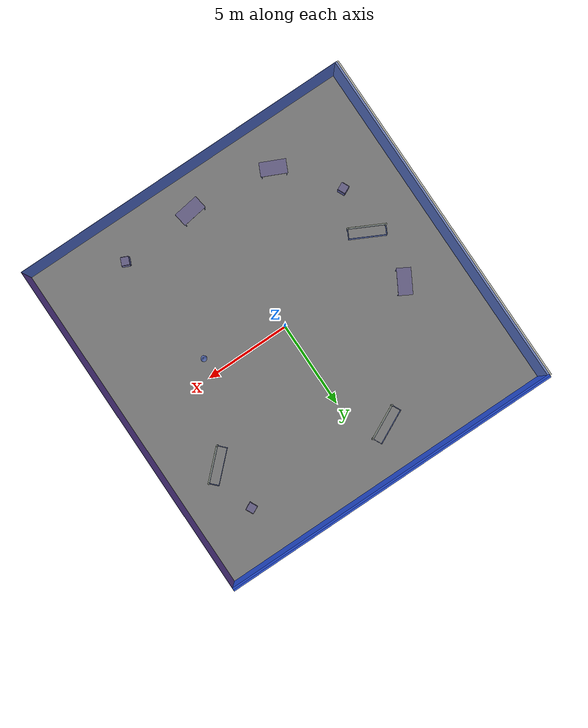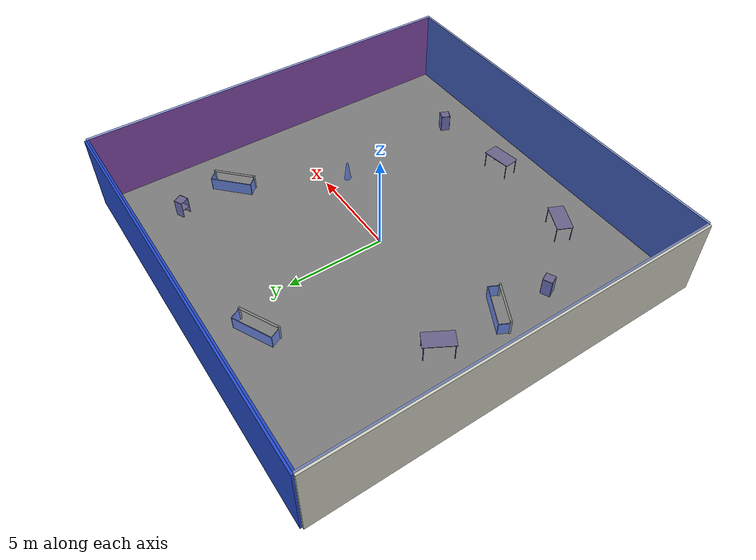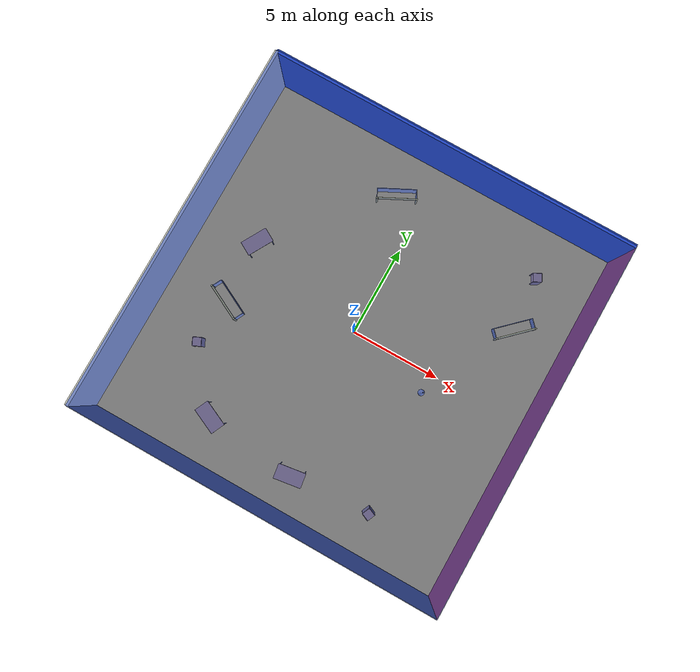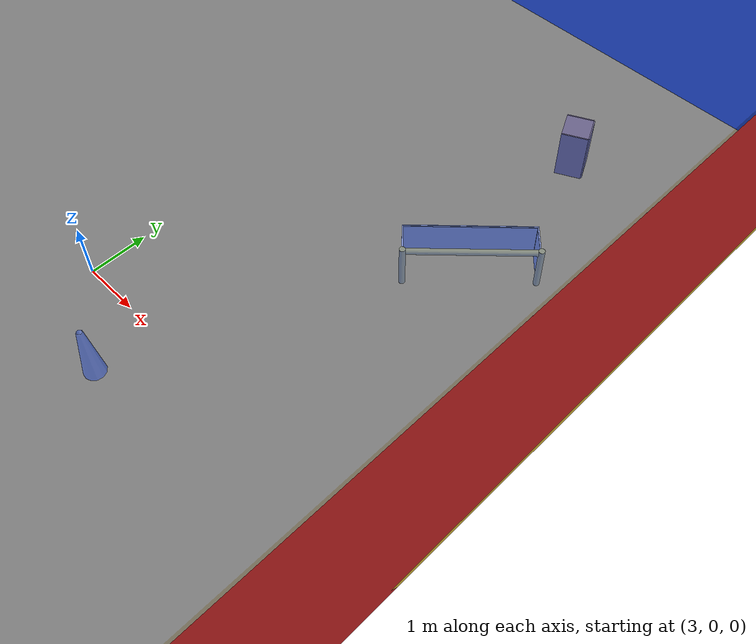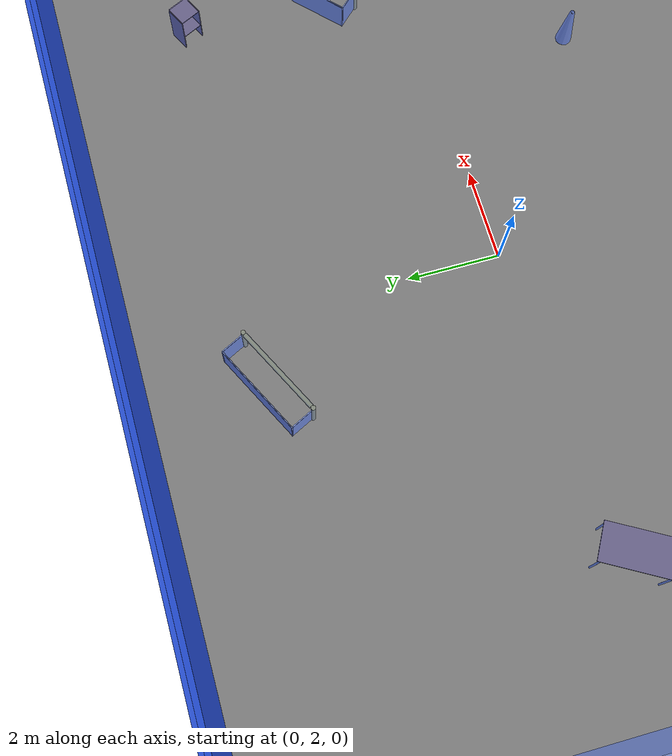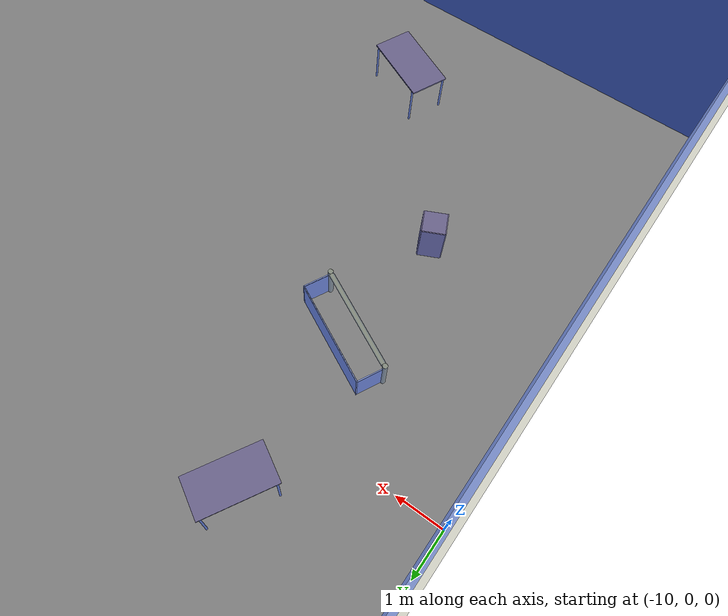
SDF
<sdf version="1.4">
 <world name="default">
  <physics type="ode">
   <max_step_size>0.001</max_step_size>
   <real_time_factor>1</real_time_factor>
   <real_time_update_rate>1000</real_time_update_rate>
   <gravity>0 0 -9.8</gravity>
  </physics>
  <scene><ambient>0.4 0.4 0.4 1</ambient><background>0.7 0.7 0.7 1</background><shadows>1</shadows></scene>
  <model name="Surrounding">
   <static>1</static>
   <link name="Ceiling">
    <collision name="Ceiling_Collision"><geometry><box><size>20 20 0.1</size></box></geometry></collision>
    <visual name="Ceiling_Visual">
     <geometry><box><size>20 20 0.1</size></box></geometry>
     <material>
      <script><uri>file://media/materials/scripts/gazebo.material</uri><name>Gazebo/BlueTransparent</name></script>
     </material>
    </visual>
    <pose>0 0 4.05 0 0 0</pose>
   </link>
   <link name="Wall_South">
    <collision name="Wall_South_Collision">
     <geometry><box><size>20 0 4</size></box></geometry>
     <pose>0 0 2 0 -0 0</pose>
    </collision>
    <visual name="Wall_South_Visual">
     <pose>0 0 2 0 -0 0</pose>
     <geometry><box><size>20 0 4</size></box></geometry>
     <material>
      <script><uri>file://media/materials/scripts/gazebo.material</uri><name>Gazebo/Road</name></script>
     </material>
    </visual>
    <velocity_decay><linear>0</linear><angular>0</angular></velocity_decay>
    <pose>0 -10 0 0 -0 0</pose>
   </link>
   <link name="Wall_East">
    <collision name="Wall_21_Collision">
     <geometry><box><size>20 0 4</size></box></geometry>
     <pose>0 0 2 0 -0 0</pose>
    </collision>
    <visual name="Wall_21_Visual">
     <pose>0 0 2 0 -0 0</pose>
     <geometry><box><size>20 0 4</size></box></geometry>
     <material>
      <script><uri>file://media/materials/scripts/gazebo.material</uri><name>Gazebo/RedBright</name></script>
     </material>
    </visual>
    <velocity_decay><linear>0</linear><angular>0</angular></velocity_decay>
    <pose>10 0 0 0 -0 1.5708</pose>
   </link>
   <link name="Wall_North">
    <collision name="Wall_22_Collision">
     <geometry><box><size>20 0.2 4</size></box></geometry>
     <pose>0 0 2 0 -0 0</pose>
    </collision>
    <visual name="Wall_22_Visual">
     <pose>0 0 2 0 -0 0</pose>
     <geometry><box><size>20 0.2 4</size></box></geometry>
     <material>
      <script><uri>file://media/materials/scripts/gazebo.material</uri><name>Gazebo/BlueGlow</name></script>
     </material>
    </visual>
    <velocity_decay><linear>0</linear><angular>0</angular></velocity_decay>
    <pose>0 10 0 0 -0 0</pose>
   </link>
   <link name="Wall_West">
    <collision name="Wall_23_Collision">
     <geometry><box><size>20 0.2 4</size></box></geometry>
     <pose>0 0 2 0 -0 0</pose>
    </collision>
    <visual name="Wall_23_Visual">
     <pose>0 0 2 0 -0 0</pose>
     <geometry><box><size>20 0.2 4</size></box></geometry>
     <material>
      <script><uri>file://media/materials/scripts/gazebo.material</uri><name>Gazebo/PaintedWall</name></script>
     </material>
    </visual>
    <velocity_decay><linear>0</linear><angular>0</angular></velocity_decay>
    <pose>-10 0 0 0 0 -1.5708</pose>
   </link>
   <link name="Ground_link">
    <collision name="collision">
     <pose>0 0 .05 0 -0 0</pose>
     <geometry><box><size>20 20 0.1</size></box></geometry>
    </collision>
    <visual name="visual">
     <pose>0 0 .05 0 -0 0</pose>
     <geometry><box><size>20 20 0.1</size></box></geometry>
     <material>
      <script><uri>file://media/materials/scripts/gazebo.material</uri><name>Gazebo/Gold</name></script>
     </material>
    </visual>
   </link>
   <static>1</static>
  </model>
  <spherical_coordinates>
   <surface_model>EARTH_WGS84</surface_model>
   <latitude_deg>0</latitude_deg>
   <longitude_deg>0</longitude_deg>
   <elevation>0</elevation>
   <heading_deg>0</heading_deg>
  </spherical_coordinates>
  <light name="lightball_0" type="diffuse">
   <diffuse>0.8 0.8 0.8 1</diffuse>
   <specular>0.2 0.2 0.2 1</specular>
   <attenuation>
    <range>100</range>
    <constant>0.7</constant>
    <linear>0.01</linear>
    <quadratic>0.001</quadratic>
   </attenuation>
   <direction>-0.5 0.1 -0.9</direction>
   <pose>-5.90788982053 8.94203298376 2.82890208759 0 0 0</pose>
  </light>
  <light name="lightball_1" type="diffuse">
   <diffuse>0.8 0.8 0.8 1</diffuse>
   <specular>0.2 0.2 0.2 1</specular>
   <attenuation>
    <range>100</range>
    <constant>0.7</constant>
    <linear>0.01</linear>
    <quadratic>0.001</quadratic>
   </attenuation>
   <direction>-0.5 0.1 -0.9</direction>
   <pose>-2.5949081778 -1.48851743881 2.24849141891 0 0 0</pose>
  </light>
  <include><uri>model://cabinet</uri><pose>-6.81786793026 -4.49119845897 0 0 0 2.01501965877</pose></include>
  <include>
   <uri>model://robocup_3Dsim_goal</uri>
   <pose>-6.71980041523 -2.05435498827 0 0 0 1.10002011009</pose>
  </include>
  <include><uri>model://table</uri><pose>-6.72349299888 1.58097596864 0 0 0 1.0554669364</pose></include>
  <include><uri>model://table</uri><pose>-4.27300351249 -7.52784027322 0 0 0 2.7081187714</pose></include>
  <include>
   <uri>model://robocup_3Dsim_goal</uri>
   <pose>-1.47004728413 7.21633227369 0 0 0 2.03555805071</pose>
  </include>
  <include><uri>model://table</uri><pose>0.775702002839 -8.08648142651 0 0 0 0.145659101099</pose></include>
  <include><uri>model://cabinet</uri><pose>5.23169390286 -7.79986898054 0 0 0 2.72709414553</pose></include>
  <include>
   <uri>model://construction_cone</uri>
   <pose>4.64484286609 -1.05882025037 0 0 0 0.122516299606</pose>
  </include>
  <include>
   <uri>model://robocup_3Dsim_goal</uri>
   <pose>7.42670550714 4.00607948258 0 0 0 2.33580549561</pose>
  </include>
  <include><uri>model://cabinet</uri><pose>6.97481869337 7.10660051635 0 0 0 0.46064171605</pose></include>
 </world>
</sdf>

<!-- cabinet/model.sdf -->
<sdf version="1.5">
  <model name="cabinet">
    <static>true</static>
    <link name="cabinet_bottom_plate">
      <inertial>
        <pose>0 0 -1 0 0 0</pose>
        <inertia>
          <ixx>2.050000</ixx>
          <ixy>0</ixy>
          <ixz>0</ixz>
          <iyy>2.050000</iyy>
          <iyz>0</iyz>
          <izz>2.050000</izz>
        </inertia>
        <mass>25.000000</mass>
      </inertial>
      <collision name="cabinet_bottom_plate_geom">
        <pose>0 0 0.010000 0 0 0</pose>
        <geometry>
          <box>
            <size>0.450000 0.450000 0.020000</size>
          </box>
        </geometry>
      </collision>
      <visual name="cabinet_bottom_plate_geom_visual">
        <pose>0 0 0.010000 0 0 0</pose>
        <geometry>
          <box>
            <size>0.450000 0.450000 0.020000</size>
          </box>
        </geometry>
        <material>
          <script>
            <uri>model://media/materials/scripts/gazebo.material</uri>
            <name>Gazebo/Wood</name>
          </script>
        </material>
      </visual>
      <collision name="cabinet_bottom_plate_geom_cabinet_back_plate">
        <pose>0.235000 0 0.510000 0 0 0</pose>
        <geometry>
          <box>
            <size>0.020000 0.450000 1.020000</size>
          </box>
        </geometry>
      </collision>
      <visual name="cabinet_bottom_plate_geom_cabinet_back_plate_visual">
        <pose>0.235000 0 0.510000 0 0 0</pose>
        <geometry>
          <box>
            <size>0.020000 0.450000 1.020000</size>
          </box>
        </geometry>
        <material>
          <script>
            <uri>model://media/materials/scripts/gazebo.material</uri>
            <name>Gazebo/Wood</name>
          </script>
        </material>
      </visual>
      <collision name="cabinet_bottom_plate_geom_cabinet_left_plate">
        <pose>0 0.235000 0.510000 0 0 0</pose>
        <geometry>
          <box>
            <size>0.450000 0.020000 1.020000</size>
          </box>
        </geometry>
      </collision>
      <visual name="cabinet_bottom_plate_geom_cabinet_left_plate_visual">
        <pose>0 0.235000 0.510000 0 0 0</pose>
        <geometry>
          <box>
            <size>0.450000 0.020000 1.020000</size>
          </box>
        </geometry>
        <material>
          <script>
            <uri>model://media/materials/scripts/gazebo.material</uri>
            <name>Gazebo/Wood</name>
          </script>
        </material>
      </visual>
      <collision name="cabinet_bottom_plate_geom_cabinet_middle_plate">
        <pose>0 0 0.510000 0 0 0</pose>
        <geometry>
          <box>
            <size>0.450000 0.450000 0.020000</size>
          </box>
        </geometry>
      </collision>
      <visual name="cabinet_bottom_plate_geom_cabinet_middle_plate_visual">
        <pose>0 0 0.510000 0 0 0</pose>
        <geometry>
          <box>
            <size>0.450000 0.450000 0.020000</size>
          </box>
        </geometry>
        <material>
          <script>
            <uri>model://media/materials/scripts/gazebo.material</uri>
            <name>Gazebo/Wood</name>
          </script>
        </material>
      </visual>
      <collision name="cabinet_bottom_plate_geom_cabinet_right_plate">
        <pose>0 -0.235000 0.510000 0 0 0</pose>
        <geometry>
          <box>
            <size>0.450000 0.020000 1.020000</size>
          </box>
        </geometry>
      </collision>
      <visual name="cabinet_bottom_plate_geom_cabinet_right_plate_visual">
        <pose>0 -0.235000 0.510000 0 0 0</pose>
        <geometry>
          <box>
            <size>0.450000 0.020000 1.020000</size>
          </box>
        </geometry>
        <material>
          <script>
            <uri>model://media/materials/scripts/gazebo.material</uri>
            <name>Gazebo/Wood</name>
          </script>
        </material>
      </visual>
      <collision name="cabinet_bottom_plate_geom_cabinet_top_plate">
        <pose>0 0 1.010000 0 0 0</pose>
        <geometry>
          <box>
            <size>0.450000 0.450000 0.020000</size>
          </box>
        </geometry>
      </collision>
      <visual name="cabinet_bottom_plate_geom_cabinet_top_plate_visual">
        <pose>0 0 1.010000 0 0 0</pose>
        <geometry>
          <box>
            <size>0.450000 0.450000 0.020000</size>
          </box>
        </geometry>
        <material>
          <script>
            <uri>model://media/materials/scripts/gazebo.material</uri>
            <name>Gazebo/Wood</name>
          </script>
        </material>
      </visual>
    </link>
  </model>
</sdf>

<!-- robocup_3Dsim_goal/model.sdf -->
<sdf version="1.5">
  <model name="robocup_3d_goal">
    <static>true</static>
    <link name="left_post">
      <pose>0 1.05 0.45 0 0 0</pose>
      <collision name="collision">
        <geometry>
          <cylinder>
            <radius>0.05</radius>
            <length>0.9</length>
          </cylinder>
        </geometry>
      </collision>
      <visual name="visual">
        <geometry>
          <cylinder>
            <radius>0.05</radius>
            <length>0.9</length>
          </cylinder>
        </geometry>
        <material>
          <script>
            <uri>file://media/materials/scripts/gazebo.material</uri>
            <name>Gazebo/ZincYellow</name>
          </script>
        </material>
      </visual>
    </link>
    <link name="left_support_horiz_lower">
      <pose>0.30 1.05 0.01 0 0 0</pose>
      <collision name="collision">
        <geometry>
          <box>
            <size>0.50 0.02 0.02</size>
          </box>
        </geometry>
      </collision>
      <visual name="visual">
        <geometry>
          <box>
            <size>0.50 0.02 0.02</size>
          </box>
        </geometry>
        <material>
          <script>
            <uri>file://media/materials/scripts/gazebo.material</uri>
            <name>Gazebo/White</name>
          </script>
        </material>
      </visual>
    </link>
    <link name="left_support_horiz_upper">
      <pose>0.30 1.05 0.79 0 0 0</pose>
      <collision name="collision">
        <geometry>
          <box>
            <size>0.50 0.02 0.02</size>
          </box>
        </geometry>
      </collision>
      <visual name="visual">
        <geometry>
          <box>
            <size>0.50 0.02 0.02</size>
          </box>
        </geometry>
        <material>
          <script>
            <uri>file://media/materials/scripts/gazebo.material</uri>
            <name>Gazebo/White</name>
          </script>
        </material>
      </visual>
    </link>
    <link name="left_support_vertical">
      <pose>0.56 1.05 0.4 0 1.5708 0</pose>
      <collision name="collision">
        <geometry>
          <box>
            <size>0.80 0.02 0.02</size>
          </box>
        </geometry>
      </collision>
      <visual name="visual">
        <geometry>
          <box>
            <size>0.80 0.02 0.02</size>
          </box>
        </geometry>
        <material>
          <script>
            <uri>file://media/materials/scripts/gazebo.material</uri>
            <name>Gazebo/White</name>
          </script>
        </material>
      </visual>
    </link>
    <link name="right_support_horiz_lower">
      <pose>0.30 -1.05 0.01 0 0 0</pose>
      <collision name="collision">
        <geometry>
          <box>
            <size>0.50 0.02 0.02</size>
          </box>
        </geometry>
      </collision>
      <visual name="visual">
        <geometry>
          <box>
            <size>0.50 0.02 0.02</size>
          </box>
        </geometry>
        <material>
          <script>
            <uri>file://media/materials/scripts/gazebo.material</uri>
            <name>Gazebo/White</name>
          </script>
        </material>
      </visual>
    </link>
    <link name="right_support_horiz_upper">
      <pose>0.30 -1.05 0.79 0 0 0</pose>
      <collision name="collision">
        <geometry>
          <box>
            <size>0.50 0.02 0.02</size>
          </box>
        </geometry>
      </collision>
      <visual name="visual">
        <geometry>
          <box>
            <size>0.50 0.02 0.02</size>
          </box>
        </geometry>
        <material>
          <script>
            <uri>file://media/materials/scripts/gazebo.material</uri>
            <name>Gazebo/White</name>
          </script>
        </material>
      </visual>
    </link>
    <link name="right_support_vertical">
      <pose>0.56 -1.05 0.4 0 1.5708 0</pose>
      <collision name="collision">
        <geometry>
          <box>
            <size>0.80 0.02 0.02</size>
          </box>
        </geometry>
      </collision>
      <visual name="visual">
        <geometry>
          <box>
            <size>0.80 0.02 0.02</size>
          </box>
        </geometry>
        <material>
          <script>
            <uri>file://media/materials/scripts/gazebo.material</uri>
            <name>Gazebo/White</name>
          </script>
        </material>
      </visual>
    </link>
    <link name="center_support_horiz_lower">
      <pose>0.56 0 0.01 0 1.5708 0</pose>
      <collision name="collision">
        <geometry>
          <box>
            <size>0.02 2.08 0.02</size>
          </box>
        </geometry>
      </collision>
      <visual name="visual">
        <geometry>
          <box>
            <size>0.02 2.08 0.02</size>
          </box>
        </geometry>
        <material>
          <script>
            <uri>file://media/materials/scripts/gazebo.material</uri>
            <name>Gazebo/White</name>
          </script>
        </material>
      </visual>
    </link>
    <link name="center_support_horiz_upper">
      <pose>0.56 0 0.79 0 1.5708 0</pose>
      <collision name="collision">
        <geometry>
          <box>
            <size>0.02 2.08 0.02</size>
          </box>
        </geometry>
      </collision>
      <visual name="visual">
        <geometry>
          <box>
            <size>0.02 2.08 0.02</size>
          </box>
        </geometry>
        <material>
          <script>
            <uri>file://media/materials/scripts/gazebo.material</uri>
            <name>Gazebo/White</name>
          </script>
        </material>
      </visual>
    </link>
    <link name="right_post">
      <pose>0 -1.05 0.45 0 0 0</pose>
      <collision name="collision">
        <geometry>
          <cylinder>
            <radius>0.05</radius>
            <length>0.9</length>
          </cylinder>
        </geometry>
      </collision>
      <visual name="visual">
        <geometry>
          <cylinder>
            <radius>0.05</radius>
            <length>0.9</length>
          </cylinder>
        </geometry>
        <material>
          <script>
            <uri>file://media/materials/scripts/gazebo.material</uri>
            <name>Gazebo/ZincYellow</name>
          </script>
        </material>
      </visual>
    </link>
    <link name="crossbar">
      <pose>0 0 0.85 1.57 1.57 0</pose>
      <collision name="collision">
        <geometry>
          <cylinder>
            <radius>0.05</radius>
            <length>2.0</length>
          </cylinder>
        </geometry>
      </collision>
      <visual name="visual">
        <geometry>
          <cylinder>
            <radius>0.05</radius>
            <length>2.0</length>
          </cylinder>
        </geometry>
        <material>
          <script>
            <uri>file://media/materials/scripts/gazebo.material</uri>
            <name>Gazebo/ZincYellow</name>
          </script>
        </material>
      </visual>
    </link>
    <link name="center_net">
      <pose>0.56 0 0.40 0 0 0</pose>
      <collision name="collision">
        <geometry>
          <box>
            <size>0.01 2.1 0.80</size>
          </box>
        </geometry>
      </collision>
      <visual name="visual">
        <geometry>
          <box>
            <size>0.01 2.1 0.80</size>
          </box>
        </geometry>
        <material>
          <script>
            <uri>model://../model_source/models/robocup09_spl_field/materials/scripts/</uri>
            <uri>model://../model_source/models/robocup09_spl_field/materials/textures/</uri>
            <name>RoboCup/Net</name>
          </script>
        </material>
      </visual>
    </link>
    <link name="left_net">
      <pose>0.30 1.05 0.40 0 0 0</pose>
      <collision name="collision">
        <geometry>
          <box>
            <size>0.50 0.01 0.76</size>
          </box>
        </geometry>
      </collision>
      <visual name="visual">
        <geometry>
          <box>
            <size>0.50 0.01 0.76</size>
          </box>
        </geometry>
        <material>
          <script>
            <uri>model://../model_source/models/robocup09_spl_field/materials/scripts/</uri>
            <uri>model://../model_source/models/robocup09_spl_field/materials/textures/</uri>
            <name>RoboCup/Net</name>
          </script>
        </material>
      </visual>
    </link>
    <link name="right_net">
      <pose>0.30 -1.05 0.40 0 0 0</pose>
      <collision name="collision">
        <geometry>
          <box>
            <size>0.50 0.01 0.76</size>
          </box>
        </geometry>
      </collision>
      <visual name="visual">
        <geometry>
          <box>
            <size>0.50 0.01 0.76</size>
          </box>
        </geometry>
        <material>
          <script>
            <uri>model://../model_source/models/robocup09_spl_field/materials/scripts/</uri>
            <uri>model://../model_source/models/robocup09_spl_field/materials/textures/</uri>
            <name>RoboCup/Net</name>
          </script>
        </material>
      </visual>
    </link>
  </model>
</sdf>

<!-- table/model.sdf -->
<sdf version="1.5">
  <model name="table">
    <static>true</static>
    <link name="link">
      <collision name="surface">
        <pose>0 0 1.0 0 0 0</pose>
        <geometry>
          <box>
            <size>1.5 0.8 0.03</size>
          </box>
        </geometry>
        <surface>
          <friction>
            <ode>
              <mu>0.6</mu>
              <mu2>0.6</mu2>
            </ode>
          </friction>
        </surface>
      </collision>
      <visual name="visual1">
        <pose>0 0 1.0 0 0 0</pose>
        <geometry>
          <box>
            <size>1.5 0.8 0.03</size>
          </box>
        </geometry>
        <material>
          <script>
            <uri>model://media/materials/scripts/gazebo.material</uri>
            <name>Gazebo/Wood</name>
          </script>
        </material>
      </visual>
      <collision name="front_left_leg">
        <pose>0.68 0.38 0.5 0 0 0</pose>
        <geometry>
          <cylinder>
            <radius>0.02</radius>
            <length>1.0</length>
          </cylinder>
        </geometry>
      </collision>
      <visual name="front_left_leg">
        <pose>0.68 0.38 0.5 0 0 0</pose>
        <geometry>
          <cylinder>
            <radius>0.02</radius>
            <length>1.0</length>
          </cylinder>
        </geometry>
        <material>
          <script>
            <uri>model://media/materials/scripts/gazebo.material</uri>
            <name>Gazebo/Grey</name>
          </script>
        </material>
      </visual>
      <collision name="front_right_leg">
        <pose>0.68 -0.38 0.5 0 0 0</pose>
        <geometry>
          <cylinder>
            <radius>0.02</radius>
            <length>1.0</length>
          </cylinder>
        </geometry>
      </collision>
      <visual name="front_right_leg">
        <pose>0.68 -0.38 0.5 0 0 0</pose>
        <geometry>
          <cylinder>
            <radius>0.02</radius>
            <length>1.0</length>
          </cylinder>
        </geometry>
        <material>
          <script>
            <uri>model://media/materials/scripts/gazebo.material</uri>
            <name>Gazebo/Grey</name>
          </script>
        </material>
      </visual>
      <collision name="back_right_leg">
        <pose>-0.68 -0.38 0.5 0 0 0</pose>
        <geometry>
          <cylinder>
            <radius>0.02</radius>
            <length>1.0</length>
          </cylinder>
        </geometry>
      </collision>
      <visual name="back_right_leg">
        <pose>-0.68 -0.38 0.5 0 0 0</pose>
        <geometry>
          <cylinder>
            <radius>0.02</radius>
            <length>1.0</length>
          </cylinder>
        </geometry>
        <material>
          <script>
            <uri>model://media/materials/scripts/gazebo.material</uri>
            <name>Gazebo/Grey</name>
          </script>
        </material>
      </visual>
      <collision name="back_left_leg">
        <pose>-0.68 0.38 0.5 0 0 0</pose>
        <geometry>
          <cylinder>
            <radius>0.02</radius>
            <length>1.0</length>
          </cylinder>
        </geometry>
      </collision>
      <visual name="back_left_leg">
        <pose>-0.68 0.38 0.5 0 0 0</pose>
        <geometry>
          <cylinder>
            <radius>0.02</radius>
            <length>1.0</length>
          </cylinder>
        </geometry>
        <material>
          <script>
            <uri>model://media/materials/scripts/gazebo.material</uri>
            <name>Gazebo/Grey</name>
          </script>
        </material>
      </visual>
    </link>
  </model>
</sdf>

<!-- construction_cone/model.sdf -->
<sdf version="1.5">
  <model name="Construction Cone">
    <link name="link">
      <collision name="collision">
        <geometry>
          <mesh>
            <scale>10 10 10</scale>
            <uri>file://isr-testbed/construction_cone/meshes/construction_cone.dae</uri>
          </mesh>
        </geometry>
      </collision>
      <visual name="visual">
        <geometry>
          <mesh>
            <scale>10 10 10</scale>
            <uri>file://isr-testbed/construction_cone/meshes/construction_cone.dae</uri>
          </mesh>
        </geometry>
      </visual>
    </link>
  </model>
</sdf>
